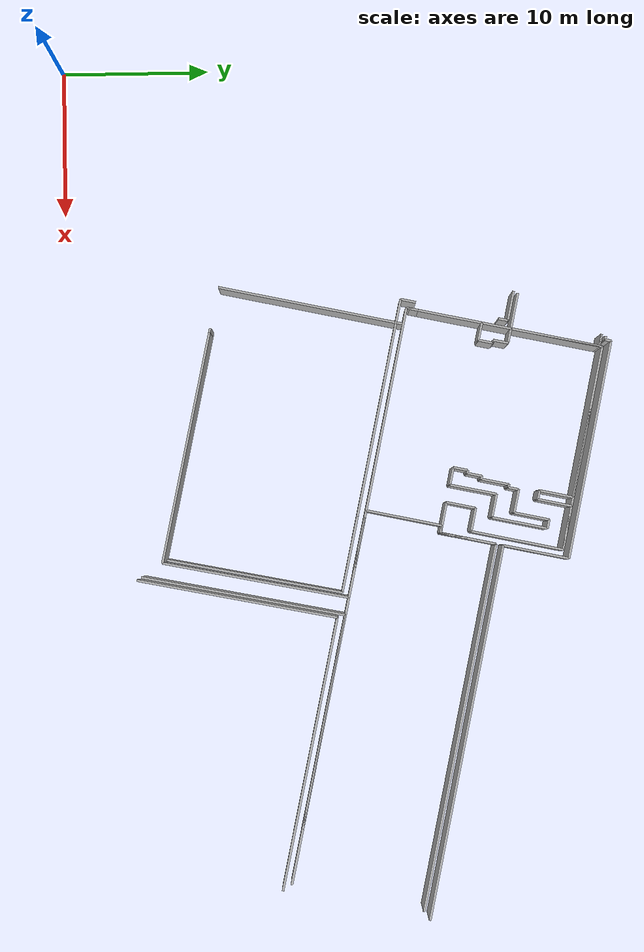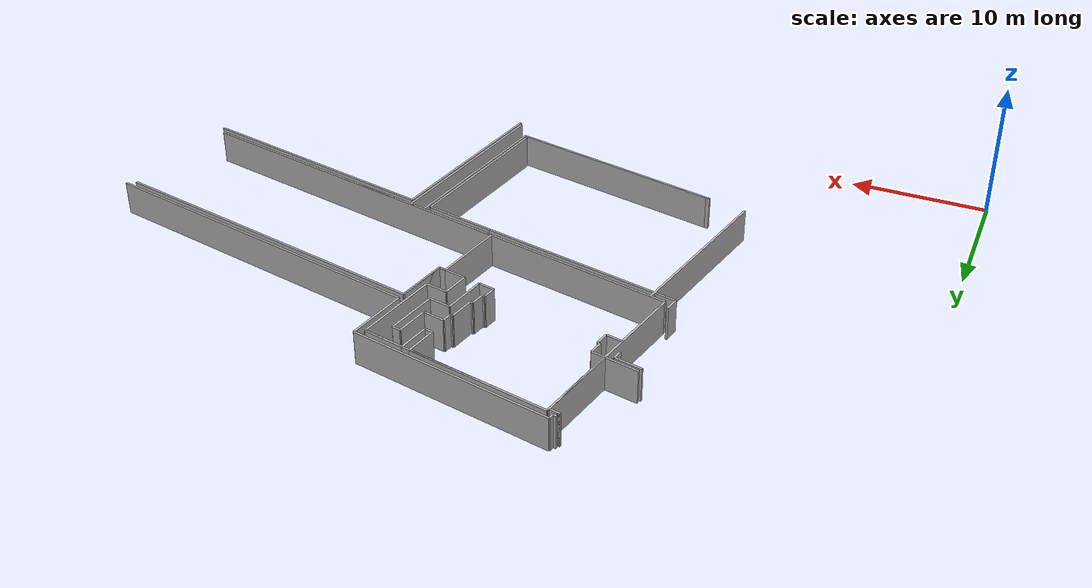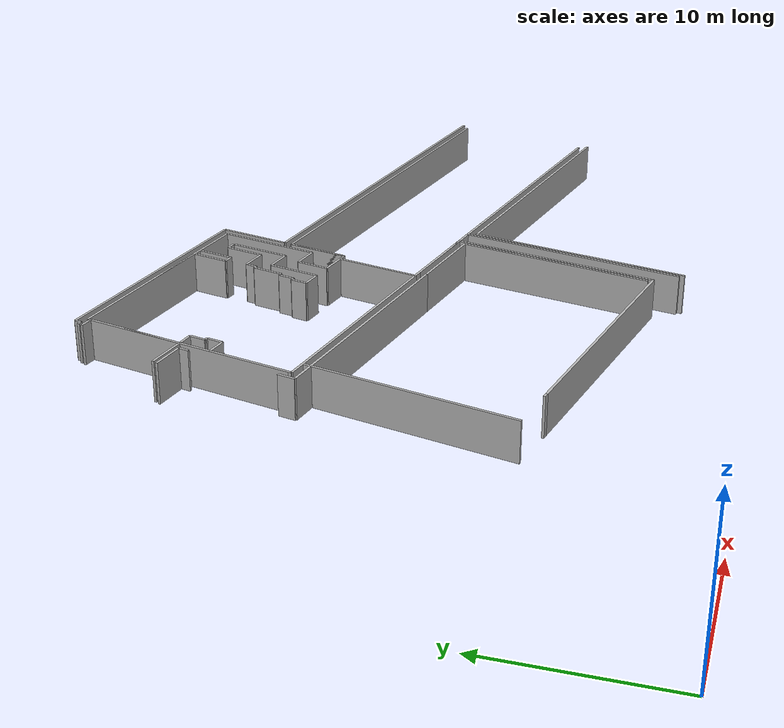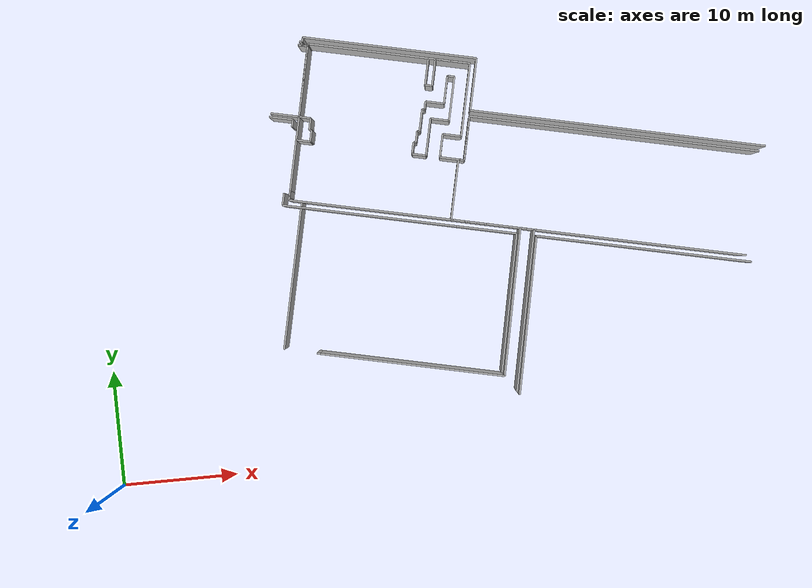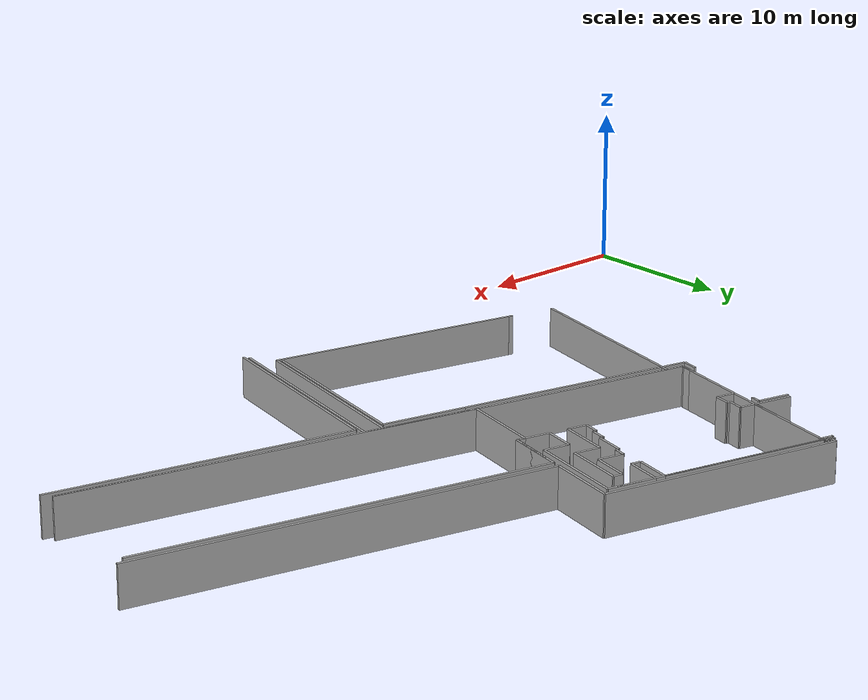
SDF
<sdf version="1.6">
 <model name="sps_2404">
  <static>1</static>
  <allow_auto_disable>0</allow_auto_disable>
  <link name="Wall257">
   <collision name="collision"><geometry><box><size>0.199818 0.15 2.5</size></box></geometry></collision>
   <visual name="visual">
    <geometry><box><size>0.199818 0.15 2.5</size></box></geometry>
    <transparency>0.0</transparency>
   </visual>
   <pose>28.732 28.2743 1.25 0 0 -0.209856</pose>
  </link>
  <link name="Wall258">
   <collision name="collision"><geometry><box><size>0.199428 0.15 2.5</size></box></geometry></collision>
   <visual name="visual">
    <geometry><box><size>0.199428 0.15 2.5</size></box></geometry>
    <transparency>0.0</transparency>
   </visual>
   <pose>29.3313 30.0882 1.25 0 0 -0.215283</pose>
  </link>
  <link name="Wall259">
   <collision name="collision"><geometry><box><size>18.5772 0.15 2.5</size></box></geometry></collision>
   <visual name="visual">
    <geometry><box><size>18.5772 0.15 2.5</size></box></geometry>
    <transparency>0.0</transparency>
   </visual>
   <pose>47.042 16.4066 1.25 0 0 -0.214404</pose>
  </link>
  <link name="Wall559">
   <collision name="collision"><geometry><box><size>1.20041 0.15 2.5</size></box></geometry></collision>
   <visual name="visual">
    <geometry><box><size>1.20041 0.15 2.5</size></box></geometry>
    <transparency>0.0</transparency>
   </visual>
   <pose>18.8302 28.3825 1.25 0 0 -0.214218</pose>
  </link>
  <link name="Wall560">
   <collision name="collision"><geometry><box><size>0.999913 0.15 2.5</size></box></geometry></collision>
   <visual name="visual">
    <geometry><box><size>0.999913 0.15 2.5</size></box></geometry>
    <transparency>0.0</transparency>
   </visual>
   <pose>19.5227 28.7435 1.25 0 -0 1.35712</pose>
  </link>
  <link name="Wall561">
   <collision name="collision"><geometry><box><size>0.99996 0.15 2.5</size></box></geometry></collision>
   <visual name="visual">
    <geometry><box><size>0.99996 0.15 2.5</size></box></geometry>
    <transparency>0.0</transparency>
   </visual>
   <pose>19.5398 29.7633 1.25 0 -0 1.35719</pose>
  </link>
  <link name="Wall562">
   <collision name="collision"><geometry><box><size>3.20063 0.15 2.5</size></box></geometry></collision>
   <visual name="visual">
    <geometry><box><size>3.20063 0.15 2.5</size></box></geometry>
    <transparency>0.0</transparency>
   </visual>
   <pose>29.5261 27.6922 1.25 0 0 -1.78516</pose>
  </link>
  <link name="Wall563">
   <collision name="collision"><geometry><box><size>3.79922 0.15 2.5</size></box></geometry></collision>
   <visual name="visual">
    <geometry><box><size>3.79922 0.15 2.5</size></box></geometry>
    <transparency>0.0</transparency>
   </visual>
   <pose>32.8187 27.2824 1.25 0 0 -1.78522</pose>
  </link>
  <link name="Wall564">
   <collision name="collision"><geometry><box><size>2.99997 0.15 2.5</size></box></geometry></collision>
   <visual name="visual">
    <geometry><box><size>2.99997 0.15 2.5</size></box></geometry>
    <transparency>0.0</transparency>
   </visual>
   <pose>32.2209 33.9624 1.25 0 0 -0.214514</pose>
  </link>
  <link name="Wall565">
   <collision name="collision"><geometry><box><size>5.22433 0.15 2.5</size></box></geometry></collision>
   <visual name="visual">
    <geometry><box><size>5.22433 0.15 2.5</size></box></geometry>
    <transparency>0.0</transparency>
   </visual>
   <pose>33.7523 19.3007 1.25 0 0 -0.214491</pose>
  </link>
  <link name="Wall853">
   <collision name="collision"><geometry><box><size>2.04037 0.15 2.5</size></box></geometry></collision>
   <visual name="visual">
    <geometry><box><size>2.04037 0.15 2.5</size></box></geometry>
    <transparency>0.0</transparency>
   </visual>
   <pose>17.1197 30.4943 1.25 0 -0 2.92705</pose>
  </link>
  <link name="Wall854">
   <collision name="collision"><geometry><box><size>0.9999 0.15 2.5</size></box></geometry></collision>
   <visual name="visual">
    <geometry><box><size>0.9999 0.15 2.5</size></box></geometry>
    <transparency>0.0</transparency>
   </visual>
   <pose>19.1572 30.3579 1.25 0 -0 2.92798</pose>
  </link>
  <link name="Wall855">
   <collision name="collision"><geometry><box><size>0.200192 0.15 2.5</size></box></geometry></collision>
   <visual name="visual">
    <geometry><box><size>0.200192 0.15 2.5</size></box></geometry>
    <transparency>0.0</transparency>
   </visual>
   <pose>19.9863 36.5227 1.25 0 -0 1.36539</pose>
  </link>
  <link name="Wall856">
   <collision name="collision"><geometry><box><size>0.700129 0.15 2.5</size></box></geometry></collision>
   <visual name="visual">
    <geometry><box><size>0.700129 0.15 2.5</size></box></geometry>
    <transparency>0.0</transparency>
   </visual>
   <pose>29.5035 30.4089 1.25 0 -0 1.35547</pose>
  </link>
  <link name="Wall857">
   <collision name="collision"><geometry><box><size>2.29978 0.15 2.5</size></box></geometry></collision>
   <visual name="visual">
    <geometry><box><size>2.29978 0.15 2.5</size></box></geometry>
    <transparency>0.0</transparency>
   </visual>
   <pose>30.5108 33.1581 1.25 0 -0 1.35653</pose>
  </link>
  <link name="Wall858">
   <collision name="collision"><geometry><box><size>13.9981 0.15 2.5</size></box></geometry></collision>
   <visual name="visual">
    <geometry><box><size>13.9981 0.15 2.5</size></box></geometry>
    <transparency>0.0</transparency>
   </visual>
   <pose>23.9769 21.9407 1.25 0 -0 2.92733</pose>
  </link>
  <link name="Wall859">
   <collision name="collision"><geometry><box><size>3.80044 0.15 2.5</size></box></geometry></collision>
   <visual name="visual">
    <geometry><box><size>3.80044 0.15 2.5</size></box></geometry>
    <transparency>0.0</transparency>
   </visual>
   <pose>31.8341 30.7719 1.25 0 0 -1.78503</pose>
  </link>
  <link name="Wall860">
   <collision name="collision"><geometry><box><size>2.10379 0.15 2.5</size></box></geometry></collision>
   <visual name="visual">
    <geometry><box><size>2.10379 0.15 2.5</size></box></geometry>
    <transparency>0.0</transparency>
   </visual>
   <pose>31.3866 25.6497 1.25 0 0 -0.214027</pose>
  </link>
  <link name="Wall861">
   <collision name="collision"><geometry><box><size>12.0015 0.15 2.5</size></box></geometry></collision>
   <visual name="visual">
    <geometry><box><size>12.0015 0.15 2.5</size></box></geometry>
    <transparency>0.0</transparency>
   </visual>
   <pose>35.1147 12.8631 1.25 0 -0 1.37118</pose>
  </link>
  <link name="Wall862">
   <collision name="collision"><geometry><box><size>5.46534 0.15 2.5</size></box></geometry></collision>
   <visual name="visual">
    <geometry><box><size>5.46534 0.15 2.5</size></box></geometry>
    <transparency>0.0</transparency>
   </visual>
   <pose>33.9782 19.7631 1.25 0 0 -0.214394</pose>
  </link>
  <link name="Wall1167">
   <collision name="collision"><geometry><box><size>0.800156 0.15 2.5</size></box></geometry></collision>
   <visual name="visual">
    <geometry><box><size>0.800156 0.15 2.5</size></box></geometry>
    <transparency>0.0</transparency>
   </visual>
   <pose>17.223 23.8198 1.25 0 -0 1.35618</pose>
  </link>
  <link name="Wall1169">
   <collision name="collision"><geometry><box><size>0.199428 0.15 2.5</size></box></geometry></collision>
   <visual name="visual">
    <geometry><box><size>0.199428 0.15 2.5</size></box></geometry>
    <transparency>0.0</transparency>
   </visual>
   <pose>19.5313 29.2534 1.25 0 -0 2.92631</pose>
  </link>
  <link name="Wall1170">
   <collision name="collision"><geometry><box><size>0.823743 0.15 2.5</size></box></geometry></collision>
   <visual name="visual">
    <geometry><box><size>0.823743 0.15 2.5</size></box></geometry>
    <transparency>0.0</transparency>
   </visual>
   <pose>19.5634 36.5125 1.25 0 -0 2.92677</pose>
  </link>
  <link name="Wall1171">
   <collision name="collision"><geometry><box><size>1.89952 0.15 2.5</size></box></geometry></collision>
   <visual name="visual">
    <geometry><box><size>1.89952 0.15 2.5</size></box></geometry>
    <transparency>0.0</transparency>
   </visual>
   <pose>29.0318 29.1815 1.25 0 -0 1.35638</pose>
  </link>
  <link name="Wall1172">
   <collision name="collision"><geometry><box><size>10.4005 0.15 2.5</size></box></geometry></collision>
   <visual name="visual">
    <geometry><box><size>10.4005 0.15 2.5</size></box></geometry>
    <transparency>0.0</transparency>
   </visual>
   <pose>25.088 35.5149 1.25 0 0 -0.214281</pose>
  </link>
  <link name="Wall1173">
   <collision name="collision"><geometry><box><size>0.599683 0.15 2.5</size></box></geometry></collision>
   <visual name="visual">
    <geometry><box><size>0.599683 0.15 2.5</size></box></geometry>
    <transparency>0.0</transparency>
   </visual>
   <pose>29.9733 32.0982 1.25 0 0 -0.214043</pose>
  </link>
  <link name="Wall1174">
   <collision name="collision"><geometry><box><size>4.50077 0.15 2.5</size></box></geometry></collision>
   <visual name="visual">
    <geometry><box><size>4.50077 0.15 2.5</size></box></geometry>
    <transparency>0.0</transparency>
   </visual>
   <pose>33.8043 31.8267 1.25 0 0 -1.78451</pose>
  </link>
  <link name="Wall1175">
   <collision name="collision"><geometry><box><size>14.9998 0.15 2.5</size></box></geometry></collision>
   <visual name="visual">
    <geometry><box><size>14.9998 0.15 2.5</size></box></geometry>
    <transparency>0.0</transparency>
   </visual>
   <pose>26.9532 35.6207 1.25 0 0 -0.214277</pose>
  </link>
  <link name="Wall1176">
   <collision name="collision"><geometry><box><size>13.7013 0.15 2.5</size></box></geometry></collision>
   <visual name="visual">
    <geometry><box><size>13.7013 0.15 2.5</size></box></geometry>
    <transparency>0.0</transparency>
   </visual>
   <pose>36.6075 11.6683 1.25 0 -0 1.37117</pose>
  </link>
  <link name="Wall1458">
   <collision name="collision"><geometry><box><size>0.649526 0.15 2.5</size></box></geometry></collision>
   <visual name="visual">
    <geometry><box><size>0.649526 0.15 2.5</size></box></geometry>
    <transparency>0.0</transparency>
   </visual>
   <pose>18.0474 29.9598 1.25 0 -0 1.35632</pose>
  </link>
  <link name="Wall1460">
   <collision name="collision"><geometry><box><size>1.19981 0.15 2.5</size></box></geometry></collision>
   <visual name="visual">
    <geometry><box><size>1.19981 0.15 2.5</size></box></geometry>
    <transparency>0.0</transparency>
   </visual>
   <pose>28.5995 26.2565 1.25 0 -0 2.92659</pose>
  </link>
  <link name="Wall1461">
   <collision name="collision"><geometry><box><size>2.29978 0.15 2.5</size></box></geometry></collision>
   <visual name="visual">
    <geometry><box><size>2.29978 0.15 2.5</size></box></geometry>
    <transparency>0.0</transparency>
   </visual>
   <pose>29.9248 33.2855 1.25 0 0 -1.78507</pose>
  </link>
  <link name="Wall1462">
   <collision name="collision"><geometry><box><size>2.00057 0.15 2.5</size></box></geometry></collision>
   <visual name="visual">
    <geometry><box><size>2.00057 0.15 2.5</size></box></geometry>
    <transparency>0.0</transparency>
   </visual>
   <pose>30.5715 26.8505 1.25 0 0 -1.78517</pose>
  </link>
  <link name="Wall1463">
   <collision name="collision"><geometry><box><size>14.9993 0.15 2.5</size></box></geometry></collision>
   <visual name="visual">
    <geometry><box><size>14.9993 0.15 2.5</size></box></geometry>
    <transparency>0.0</transparency>
   </visual>
   <pose>23.8719 21.4516 1.25 0 -0 2.92729</pose>
  </link>
  <link name="Wall1466">
   <collision name="collision"><geometry><box><size>25 0.15 2.5</size></box></geometry></collision>
   <visual name="visual">
    <geometry><box><size>25 0.15 2.5</size></box></geometry>
    <transparency>0.0</transparency>
   </visual>
   <pose>45.4367 26.4789 1.25 0 0 -0.214407</pose>
  </link>
  <link name="Wall1774">
   <collision name="collision"><geometry><box><size>12.7769 0.15 2.5</size></box></geometry></collision>
   <visual name="visual">
    <geometry><box><size>12.7769 0.15 2.5</size></box></geometry>
    <transparency>0.0</transparency>
   </visual>
   <pose>16.8747 16.9731 1.25 0 0 -1.78505</pose>
  </link>
  <link name="Wall1775">
   <collision name="collision"><geometry><box><size>2.45895 0.15 2.5</size></box></geometry></collision>
   <visual name="visual">
    <geometry><box><size>2.45895 0.15 2.5</size></box></geometry>
    <transparency>0.0</transparency>
   </visual>
   <pose>17.4674 30.7256 1.25 0 -0 2.92708</pose>
  </link>
  <link name="Wall1776">
   <collision name="collision"><geometry><box><size>0.400685 0.15 2.5</size></box></geometry></collision>
   <visual name="visual">
    <geometry><box><size>0.400685 0.15 2.5</size></box></geometry>
    <transparency>0.0</transparency>
   </visual>
   <pose>19.5828 37.0196 1.25 0 -0 1.35963</pose>
  </link>
  <link name="Wall1777">
   <collision name="collision"><geometry><box><size>0.999545 0.15 2.5</size></box></geometry></collision>
   <visual name="visual">
    <geometry><box><size>0.999545 0.15 2.5</size></box></geometry>
    <transparency>0.0</transparency>
   </visual>
   <pose>28.1199 26.8728 1.25 0 -0 1.35623</pose>
  </link>
  <link name="Wall1778">
   <collision name="collision"><geometry><box><size>0.999584 0.15 2.5</size></box></geometry></collision>
   <visual name="visual">
    <geometry><box><size>0.999584 0.15 2.5</size></box></geometry>
    <transparency>0.0</transparency>
   </visual>
   <pose>28.5277 27.8068 1.25 0 -0 1.35605</pose>
  </link>
  <link name="Wall1779">
   <collision name="collision"><geometry><box><size>2.40023 0.15 2.5</size></box></geometry></collision>
   <visual name="visual">
    <geometry><box><size>2.40023 0.15 2.5</size></box></geometry>
    <transparency>0.0</transparency>
   </visual>
   <pose>31.3964 31.5833 1.25 0 -0 1.35616</pose>
  </link>
  <link name="Wall1780">
   <collision name="collision"><geometry><box><size>0.599644 0.15 2.5</size></box></geometry></collision>
   <visual name="visual">
    <geometry><box><size>0.599644 0.15 2.5</size></box></geometry>
    <transparency>0.0</transparency>
   </visual>
   <pose>31.9451 32.6923 1.25 0 0 -0.213745</pose>
  </link>
  <link name="Wall1781">
   <collision name="collision"><geometry><box><size>6.29948 0.15 2.5</size></box></geometry></collision>
   <visual name="visual">
    <geometry><box><size>6.29948 0.15 2.5</size></box></geometry>
    <transparency>0.0</transparency>
   </visual>
   <pose>33.0167 30.5654 1.25 0 0 -1.78509</pose>
  </link>
  <link name="Wall1783">
   <collision name="collision"><geometry><box><size>13.9512 0.15 2.5</size></box></geometry></collision>
   <visual name="visual">
    <geometry><box><size>13.9512 0.15 2.5</size></box></geometry>
    <transparency>0.0</transparency>
   </visual>
   <pose>36.4377 12.089 1.25 0 -0 1.37118</pose>
  </link>
  <link name="Wall1785">
   <collision name="collision"><geometry><box><size>25.5023 0.15 2.5</size></box></geometry></collision>
   <visual name="visual">
    <geometry><box><size>25.5023 0.15 2.5</size></box></geometry>
    <transparency>0.0</transparency>
   </visual>
   <pose>45.7862 26.9145 1.25 0 0 -0.214405</pose>
  </link>
  <link name="Wall2083">
   <collision name="collision"><geometry><box><size>1.04972 0.15 2.5</size></box></geometry></collision>
   <visual name="visual">
    <geometry><box><size>1.04972 0.15 2.5</size></box></geometry>
    <transparency>0.0</transparency>
   </visual>
   <pose>16.6554 23.5594 1.25 0 -0 1.35671</pose>
  </link>
  <link name="Wall2085">
   <collision name="collision"><geometry><box><size>0.300031 0.15 2.5</size></box></geometry></collision>
   <visual name="visual">
    <geometry><box><size>0.300031 0.15 2.5</size></box></geometry>
    <transparency>0.0</transparency>
   </visual>
   <pose>18.4348 10.0963 1.25 0 0 -0.213594</pose>
  </link>
  <link name="Wall2086">
   <collision name="collision"><geometry><box><size>0.199547 0.15 2.5</size></box></geometry></collision>
   <visual name="visual">
    <geometry><box><size>0.199547 0.15 2.5</size></box></geometry>
    <transparency>0.0</transparency>
   </visual>
   <pose>28.3238 27.3398 1.25 0 0 -0.215152</pose>
  </link>
  <link name="Wall2087">
   <collision name="collision"><geometry><box><size>1.59916 0.15 2.5</size></box></geometry></collision>
   <visual name="visual">
    <geometry><box><size>1.59916 0.15 2.5</size></box></geometry>
    <transparency>0.0</transparency>
   </visual>
   <pose>30.3595 30.5808 1.25 0 0 -0.214343</pose>
  </link>
  <link name="Wall2088">
   <collision name="collision"><geometry><box><size>0.503891 0.15 2.5</size></box></geometry></collision>
   <visual name="visual">
    <geometry><box><size>0.503891 0.15 2.5</size></box></geometry>
    <transparency>0.0</transparency>
   </visual>
   <pose>31.062 20.3985 1.25 0 0 -0.215949</pose>
  </link>
  <link name="Wall2089">
   <collision name="collision"><geometry><box><size>1.6003 0.15 2.5</size></box></geometry></collision>
   <visual name="visual">
    <geometry><box><size>1.6003 0.15 2.5</size></box></geometry>
    <transparency>0.0</transparency>
   </visual>
   <pose>30.6483 29.0855 1.25 0 -0 2.92702</pose>
  </link>
  <link name="Wall2090">
   <collision name="collision"><geometry><box><size>1.59923 0.15 2.5</size></box></geometry></collision>
   <visual name="visual">
    <geometry><box><size>1.59923 0.15 2.5</size></box></geometry>
    <transparency>0.0</transparency>
   </visual>
   <pose>31.5656 27.6578 1.25 0 -0 2.92722</pose>
  </link>
  <link name="Wall2092">
   <collision name="collision"><geometry><box><size>15.9016 0.15 2.5</size></box></geometry></collision>
   <visual name="visual">
    <geometry><box><size>15.9016 0.15 2.5</size></box></geometry>
    <transparency>0.0</transparency>
   </visual>
   <pose>26.3505 8.37398 1.25 0 0 -0.214254</pose>
  </link>
  <link name="Wall2093">
   <collision name="collision"><geometry><box><size>12.7515 0.15 2.5</size></box></geometry></collision>
   <visual name="visual">
    <geometry><box><size>12.7515 0.15 2.5</size></box></geometry>
    <transparency>0.0</transparency>
   </visual>
   <pose>35.3839 12.9326 1.25 0 -0 1.37116</pose>
  </link>
  <link name="Wall2094">
   <collision name="collision"><geometry><box><size>18.3346 0.15 2.5</size></box></geometry></collision>
   <visual name="visual">
    <geometry><box><size>18.3346 0.15 2.5</size></box></geometry>
    <transparency>0.0</transparency>
   </visual>
   <pose>46.7783 16.9757 1.25 0 0 -0.214396</pose>
  </link>
  <link name="Wall2408">
   <collision name="collision"><geometry><box><size>0.243869 0.15 2.5</size></box></geometry></collision>
   <visual name="visual">
    <geometry><box><size>0.243869 0.15 2.5</size></box></geometry>
    <transparency>0.0</transparency>
   </visual>
   <pose>19.4217 36.8498 1.25 0 0 -0.215656</pose>
  </link>
  <link name="Wall4093">
   <collision name="collision"><geometry><box><size>12.7515 0.15 2.5</size></box></geometry></collision>
   <visual name="visual">
    <geometry><box><size>12.7515 0.15 2.5</size></box></geometry>
    <transparency>0.0</transparency>
   </visual>
   <pose>35.3839 12.9326 1.25 0 -0 1.37116</pose>
  </link>
  <link name="Wall4094">
   <collision name="collision"><geometry><box><size>1.20014 0.15 2.5</size></box></geometry></collision>
   <visual name="visual">
    <geometry><box><size>1.20014 0.15 2.5</size></box></geometry>
    <transparency>0.0</transparency>
   </visual>
   <pose>37.2346 19.0539 1.25 0 0 -0.214631</pose>
  </link>
  <link name="Wall9011">
   <collision name="collision"><geometry><box><size>13.9981 0.15 2.5</size></box></geometry></collision>
   <visual name="visual">
    <geometry><box><size>13.9981 0.15 2.5</size></box></geometry>
    <transparency>0.0</transparency>
   </visual>
   <pose>23.9769 21.9407 1.25 0 -0 2.92733</pose>
  </link>
  <link name="Wall9012">
   <collision name="collision"><geometry><box><size>7.1996 0.15 2.5</size></box></geometry></collision>
   <visual name="visual">
    <geometry><box><size>7.1996 0.15 2.5</size></box></geometry>
    <transparency>0.0</transparency>
   </visual>
   <pose>17.9033 26.9464 1.25 0 -0 1.35653</pose>
  </link>
  <link name="Wall9013">
   <collision name="collision"><geometry><box><size>6.30051 0.15 2.5</size></box></geometry></collision>
   <visual name="visual">
    <geometry><box><size>6.30051 0.15 2.5</size></box></geometry>
    <transparency>0.0</transparency>
   </visual>
   <pose>19.3377 33.5423 1.25 0 -0 1.3568</pose>
  </link>
  <link name="Wall9014">
   <collision name="collision"><geometry><box><size>14.0001 0.15 2.5</size></box></geometry></collision>
   <visual name="visual">
    <geometry><box><size>14.0001 0.15 2.5</size></box></geometry>
    <transparency>0.0</transparency>
   </visual>
   <pose>26.8466 35.1319 1.25 0 0 -0.214321</pose>
  </link>
  <link name="Wall13105">
   <collision name="collision"><geometry><box><size>0.823743 0.15 2.5</size></box></geometry></collision>
   <visual name="visual">
    <geometry><box><size>0.823743 0.15 2.5</size></box></geometry>
    <transparency>0.0</transparency>
   </visual>
   <pose>19.5634 36.5125 1.25 0 0 -0.214819</pose>
  </link>
  <link name="Wall13106">
   <collision name="collision"><geometry><box><size>6.10033 0.15 2.5</size></box></geometry></collision>
   <visual name="visual">
    <geometry><box><size>6.10033 0.15 2.5</size></box></geometry>
    <transparency>0.0</transparency>
   </visual>
   <pose>19.3173 33.4443 1.25 0 0 -1.78507</pose>
  </link>
  <link name="Wall13107">
   <collision name="collision"><geometry><box><size>2.45895 0.15 2.5</size></box></geometry></collision>
   <visual name="visual">
    <geometry><box><size>2.45895 0.15 2.5</size></box></geometry>
    <transparency>0.0</transparency>
   </visual>
   <pose>17.4674 30.7256 1.25 0 -0 2.92708</pose>
  </link>
  <link name="Wall14262">
   <collision name="collision"><geometry><box><size>25.5039 0.15 2.5</size></box></geometry></collision>
   <visual name="visual">
    <geometry><box><size>25.5039 0.15 2.5</size></box></geometry>
    <transparency>0.0</transparency>
   </visual>
   <pose>43.2758 17.7389 1.25 0 -0 2.92716</pose>
  </link>
  <link name="Wall14263">
   <collision name="collision"><geometry><box><size>5.19995 0.15 2.5</size></box></geometry></collision>
   <visual name="visual">
    <geometry><box><size>5.19995 0.15 2.5</size></box></geometry>
    <transparency>0.0</transparency>
   </visual>
   <pose>31.3687 22.993 1.25 0 -0 1.35655</pose>
  </link>
  <link name="Wall14264">
   <collision name="collision"><geometry><box><size>0.50451 0.15 2.5</size></box></geometry></collision>
   <visual name="visual">
    <geometry><box><size>0.50451 0.15 2.5</size></box></geometry>
    <transparency>0.0</transparency>
   </visual>
   <pose>32.168 25.4799 1.25 0 0 -0.214194</pose>
  </link>
  <link name="Wall14265">
   <collision name="collision"><geometry><box><size>3.79922 0.15 2.5</size></box></geometry></collision>
   <visual name="visual">
    <geometry><box><size>3.79922 0.15 2.5</size></box></geometry>
    <transparency>0.0</transparency>
   </visual>
   <pose>32.8187 27.2824 1.25 0 -0 1.35637</pose>
  </link>
  <link name="Wall14266">
   <collision name="collision"><geometry><box><size>25 0.15 2.5</size></box></geometry></collision>
   <visual name="visual">
    <geometry><box><size>25 0.15 2.5</size></box></geometry>
    <transparency>0.0</transparency>
   </visual>
   <pose>45.4367 26.4789 1.25 0 0 -0.214407</pose>
  </link>
 </model>
</sdf>
